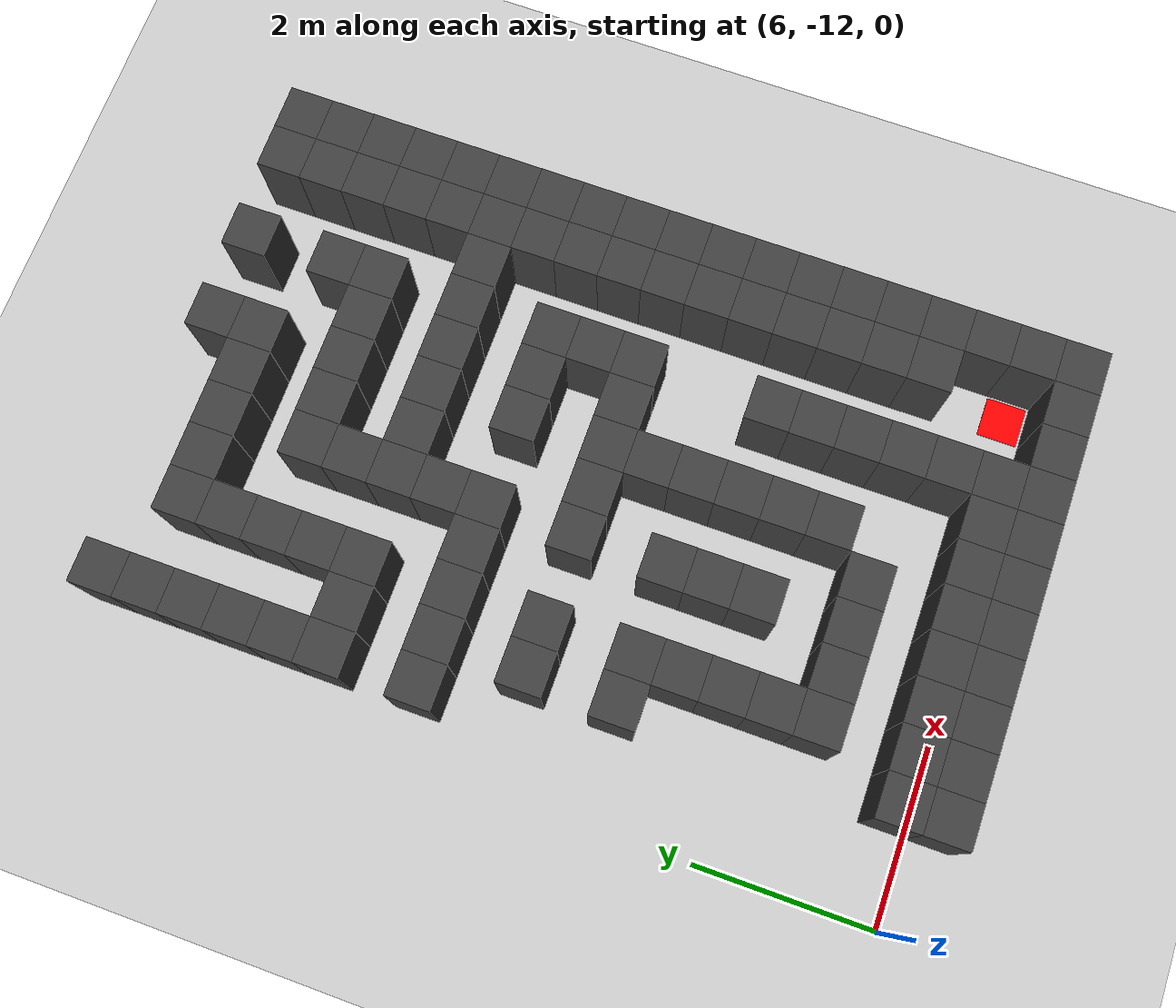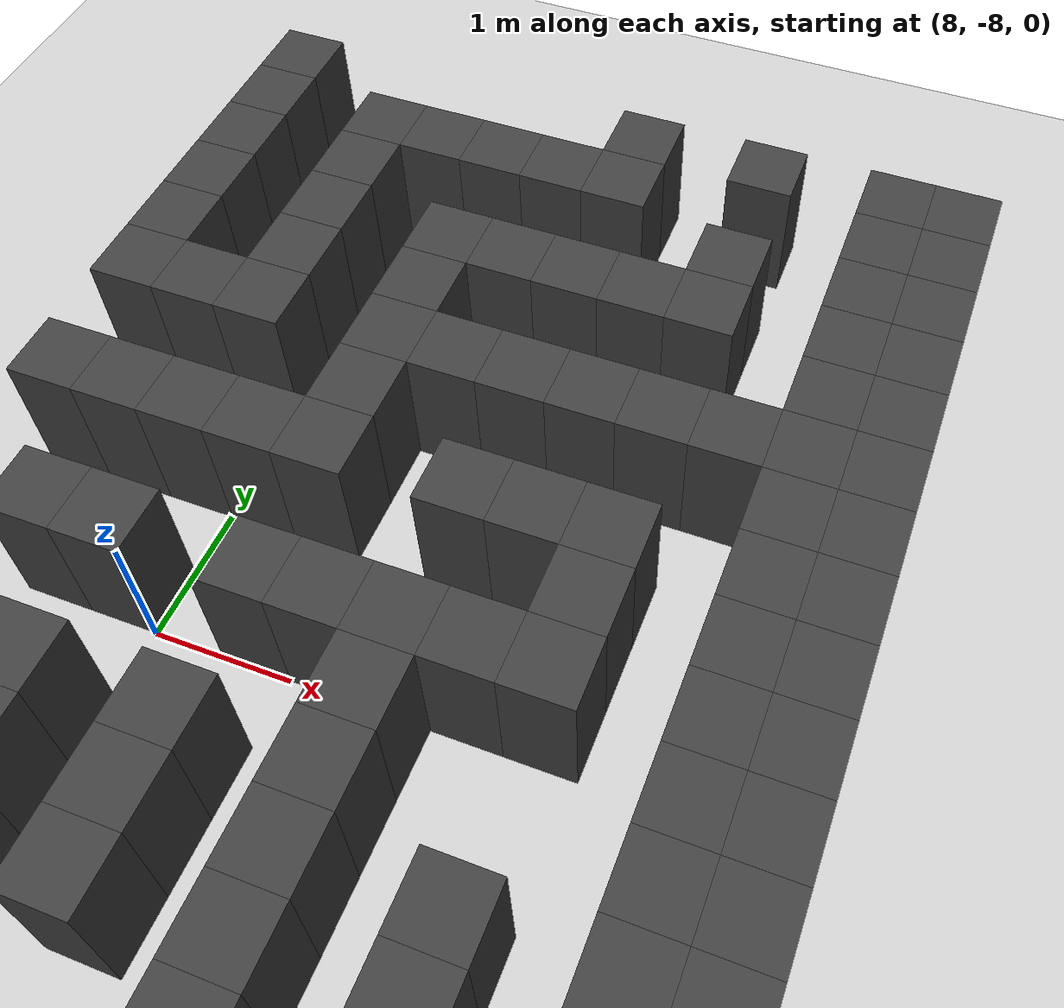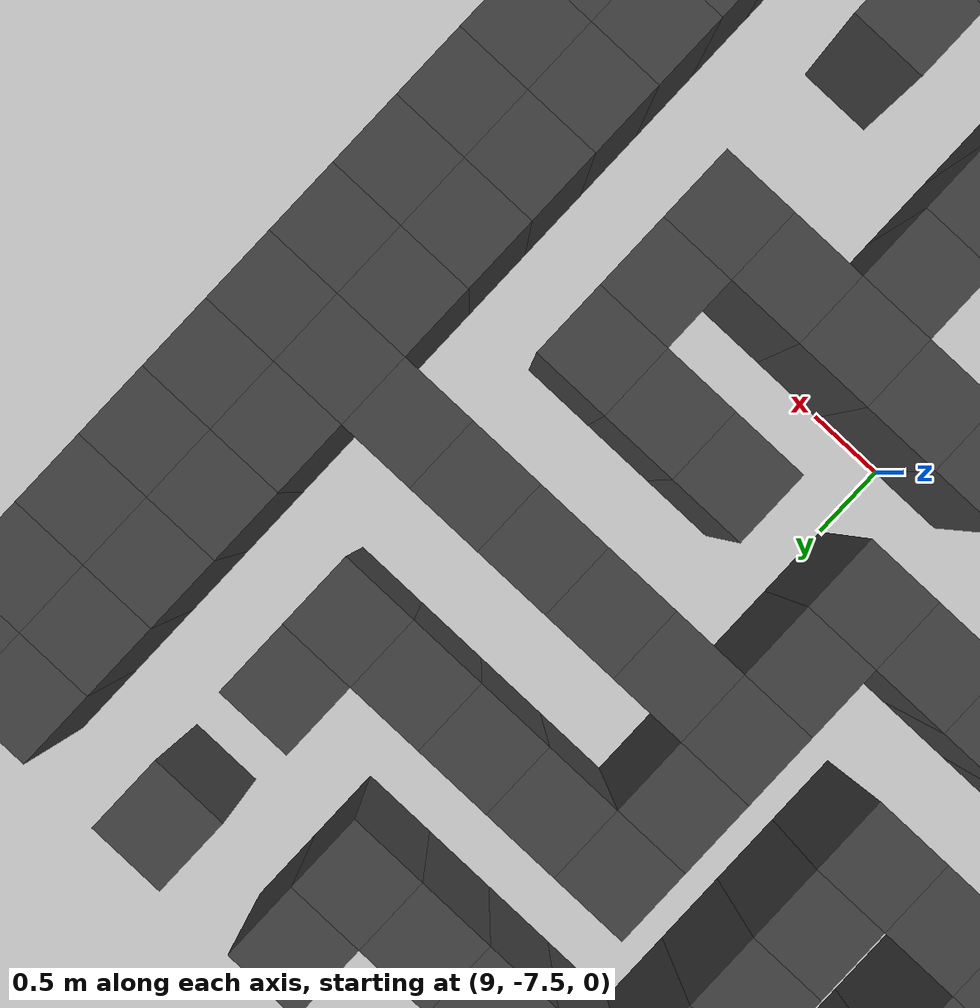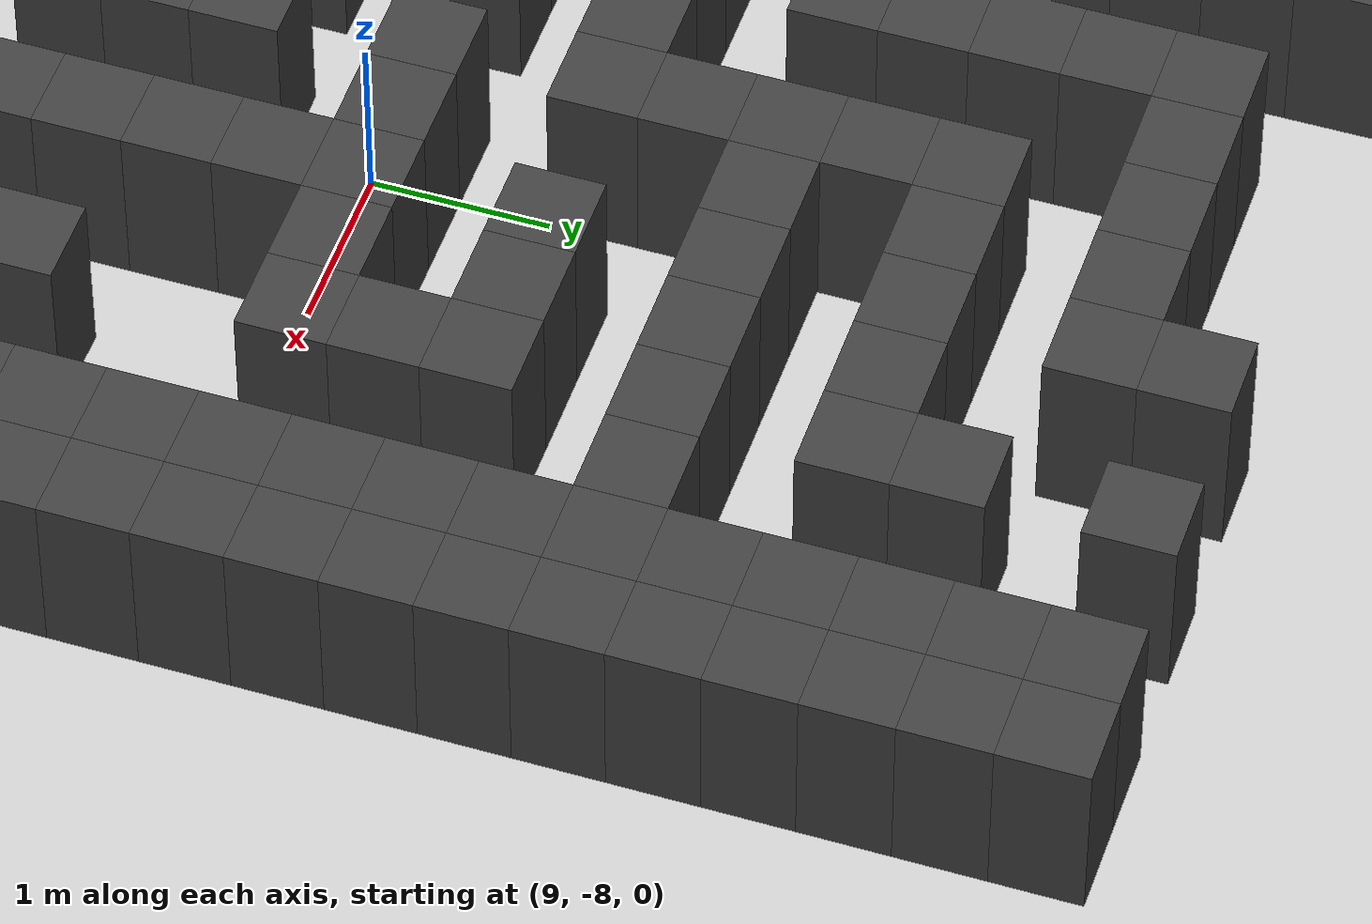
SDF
<sdf version="1.7">
 <world name="map_16734">
  <model name="ground_plane">
   <static>true</static>
   <link name="link">
    <collision name="collision">
     <geometry><plane><normal>0 0 1</normal><size>200 200</size></plane></geometry>
    </collision>
    <visual name="visual">
     <geometry><plane><normal>0 0 1</normal><size>200 200</size></plane></geometry>
     <material><ambient>0.8 0.8 0.8 1</ambient><diffuse>0.8 0.8 0.8 1</diffuse></material>
    </visual>
   </link>
  </model>
  <model name="maze_environment">
   <static>true</static>
   <link name="wall_769">
    <pose>6.750 -3.250 0.500 0 0 0</pose>
    <collision name="col"><geometry><box><size>0.5 0.5 1.0</size></box></geometry></collision>
    <visual name="vis">
     <geometry><box><size>0.5 0.5 1.0</size></box></geometry>
     <material><ambient>0.15 0.15 0.15 1</ambient><diffuse>0.25 0.25 0.25 1</diffuse></material>
    </visual>
   </link>
   <link name="wall_770">
    <pose>9.750 -3.250 0.500 0 0 0</pose>
    <collision name="col"><geometry><box><size>0.5 0.5 1.0</size></box></geometry></collision>
    <visual name="vis">
     <geometry><box><size>0.5 0.5 1.0</size></box></geometry>
     <material><ambient>0.15 0.15 0.15 1</ambient><diffuse>0.25 0.25 0.25 1</diffuse></material>
    </visual>
   </link>
   <link name="wall_771">
    <pose>10.750 -3.250 0.500 0 0 0</pose>
    <collision name="col"><geometry><box><size>0.5 0.5 1.0</size></box></geometry></collision>
    <visual name="vis">
     <geometry><box><size>0.5 0.5 1.0</size></box></geometry>
     <material><ambient>0.15 0.15 0.15 1</ambient><diffuse>0.25 0.25 0.25 1</diffuse></material>
    </visual>
   </link>
   <link name="wall_772">
    <pose>11.750 -3.250 0.500 0 0 0</pose>
    <collision name="col"><geometry><box><size>0.5 0.5 1.0</size></box></geometry></collision>
    <visual name="vis">
     <geometry><box><size>0.5 0.5 1.0</size></box></geometry>
     <material><ambient>0.15 0.15 0.15 1</ambient><diffuse>0.25 0.25 0.25 1</diffuse></material>
    </visual>
   </link>
   <link name="wall_773">
    <pose>12.250 -3.250 0.500 0 0 0</pose>
    <collision name="col"><geometry><box><size>0.5 0.5 1.0</size></box></geometry></collision>
    <visual name="vis">
     <geometry><box><size>0.5 0.5 1.0</size></box></geometry>
     <material><ambient>0.15 0.15 0.15 1</ambient><diffuse>0.25 0.25 0.25 1</diffuse></material>
    </visual>
   </link>
   <link name="wall_803">
    <pose>6.750 -3.750 0.500 0 0 0</pose>
    <collision name="col"><geometry><box><size>0.5 0.5 1.0</size></box></geometry></collision>
    <visual name="vis">
     <geometry><box><size>0.5 0.5 1.0</size></box></geometry>
     <material><ambient>0.15 0.15 0.15 1</ambient><diffuse>0.25 0.25 0.25 1</diffuse></material>
    </visual>
   </link>
   <link name="wall_804">
    <pose>7.750 -3.750 0.500 0 0 0</pose>
    <collision name="col"><geometry><box><size>0.5 0.5 1.0</size></box></geometry></collision>
    <visual name="vis">
     <geometry><box><size>0.5 0.5 1.0</size></box></geometry>
     <material><ambient>0.15 0.15 0.15 1</ambient><diffuse>0.25 0.25 0.25 1</diffuse></material>
    </visual>
   </link>
   <link name="wall_805">
    <pose>8.250 -3.750 0.500 0 0 0</pose>
    <collision name="col"><geometry><box><size>0.5 0.5 1.0</size></box></geometry></collision>
    <visual name="vis">
     <geometry><box><size>0.5 0.5 1.0</size></box></geometry>
     <material><ambient>0.15 0.15 0.15 1</ambient><diffuse>0.25 0.25 0.25 1</diffuse></material>
    </visual>
   </link>
   <link name="wall_806">
    <pose>8.750 -3.750 0.500 0 0 0</pose>
    <collision name="col"><geometry><box><size>0.5 0.5 1.0</size></box></geometry></collision>
    <visual name="vis">
     <geometry><box><size>0.5 0.5 1.0</size></box></geometry>
     <material><ambient>0.15 0.15 0.15 1</ambient><diffuse>0.25 0.25 0.25 1</diffuse></material>
    </visual>
   </link>
   <link name="wall_807">
    <pose>9.250 -3.750 0.500 0 0 0</pose>
    <collision name="col"><geometry><box><size>0.5 0.5 1.0</size></box></geometry></collision>
    <visual name="vis">
     <geometry><box><size>0.5 0.5 1.0</size></box></geometry>
     <material><ambient>0.15 0.15 0.15 1</ambient><diffuse>0.25 0.25 0.25 1</diffuse></material>
    </visual>
   </link>
   <link name="wall_808">
    <pose>9.750 -3.750 0.500 0 0 0</pose>
    <collision name="col"><geometry><box><size>0.5 0.5 1.0</size></box></geometry></collision>
    <visual name="vis">
     <geometry><box><size>0.5 0.5 1.0</size></box></geometry>
     <material><ambient>0.15 0.15 0.15 1</ambient><diffuse>0.25 0.25 0.25 1</diffuse></material>
    </visual>
   </link>
   <link name="wall_809">
    <pose>11.750 -3.750 0.500 0 0 0</pose>
    <collision name="col"><geometry><box><size>0.5 0.5 1.0</size></box></geometry></collision>
    <visual name="vis">
     <geometry><box><size>0.5 0.5 1.0</size></box></geometry>
     <material><ambient>0.15 0.15 0.15 1</ambient><diffuse>0.25 0.25 0.25 1</diffuse></material>
    </visual>
   </link>
   <link name="wall_810">
    <pose>12.250 -3.750 0.500 0 0 0</pose>
    <collision name="col"><geometry><box><size>0.5 0.5 1.0</size></box></geometry></collision>
    <visual name="vis">
     <geometry><box><size>0.5 0.5 1.0</size></box></geometry>
     <material><ambient>0.15 0.15 0.15 1</ambient><diffuse>0.25 0.25 0.25 1</diffuse></material>
    </visual>
   </link>
   <link name="wall_819">
    <pose>6.750 -4.250 0.500 0 0 0</pose>
    <collision name="col"><geometry><box><size>0.5 0.5 1.0</size></box></geometry></collision>
    <visual name="vis">
     <geometry><box><size>0.5 0.5 1.0</size></box></geometry>
     <material><ambient>0.15 0.15 0.15 1</ambient><diffuse>0.25 0.25 0.25 1</diffuse></material>
    </visual>
   </link>
   <link name="wall_820">
    <pose>7.750 -4.250 0.500 0 0 0</pose>
    <collision name="col"><geometry><box><size>0.5 0.5 1.0</size></box></geometry></collision>
    <visual name="vis">
     <geometry><box><size>0.5 0.5 1.0</size></box></geometry>
     <material><ambient>0.15 0.15 0.15 1</ambient><diffuse>0.25 0.25 0.25 1</diffuse></material>
    </visual>
   </link>
   <link name="wall_821">
    <pose>10.750 -4.250 0.500 0 0 0</pose>
    <collision name="col"><geometry><box><size>0.5 0.5 1.0</size></box></geometry></collision>
    <visual name="vis">
     <geometry><box><size>0.5 0.5 1.0</size></box></geometry>
     <material><ambient>0.15 0.15 0.15 1</ambient><diffuse>0.25 0.25 0.25 1</diffuse></material>
    </visual>
   </link>
   <link name="wall_822">
    <pose>11.750 -4.250 0.500 0 0 0</pose>
    <collision name="col"><geometry><box><size>0.5 0.5 1.0</size></box></geometry></collision>
    <visual name="vis">
     <geometry><box><size>0.5 0.5 1.0</size></box></geometry>
     <material><ambient>0.15 0.15 0.15 1</ambient><diffuse>0.25 0.25 0.25 1</diffuse></material>
    </visual>
   </link>
   <link name="wall_823">
    <pose>12.250 -4.250 0.500 0 0 0</pose>
    <collision name="col"><geometry><box><size>0.5 0.5 1.0</size></box></geometry></collision>
    <visual name="vis">
     <geometry><box><size>0.5 0.5 1.0</size></box></geometry>
     <material><ambient>0.15 0.15 0.15 1</ambient><diffuse>0.25 0.25 0.25 1</diffuse></material>
    </visual>
   </link>
   <link name="wall_852">
    <pose>6.750 -4.750 0.500 0 0 0</pose>
    <collision name="col"><geometry><box><size>0.5 0.5 1.0</size></box></geometry></collision>
    <visual name="vis">
     <geometry><box><size>0.5 0.5 1.0</size></box></geometry>
     <material><ambient>0.15 0.15 0.15 1</ambient><diffuse>0.25 0.25 0.25 1</diffuse></material>
    </visual>
   </link>
   <link name="wall_853">
    <pose>7.750 -4.750 0.500 0 0 0</pose>
    <collision name="col"><geometry><box><size>0.5 0.5 1.0</size></box></geometry></collision>
    <visual name="vis">
     <geometry><box><size>0.5 0.5 1.0</size></box></geometry>
     <material><ambient>0.15 0.15 0.15 1</ambient><diffuse>0.25 0.25 0.25 1</diffuse></material>
    </visual>
   </link>
   <link name="wall_854">
    <pose>8.750 -4.750 0.500 0 0 0</pose>
    <collision name="col"><geometry><box><size>0.5 0.5 1.0</size></box></geometry></collision>
    <visual name="vis">
     <geometry><box><size>0.5 0.5 1.0</size></box></geometry>
     <material><ambient>0.15 0.15 0.15 1</ambient><diffuse>0.25 0.25 0.25 1</diffuse></material>
    </visual>
   </link>
   <link name="wall_855">
    <pose>9.250 -4.750 0.500 0 0 0</pose>
    <collision name="col"><geometry><box><size>0.5 0.5 1.0</size></box></geometry></collision>
    <visual name="vis">
     <geometry><box><size>0.5 0.5 1.0</size></box></geometry>
     <material><ambient>0.15 0.15 0.15 1</ambient><diffuse>0.25 0.25 0.25 1</diffuse></material>
    </visual>
   </link>
   <link name="wall_856">
    <pose>9.750 -4.750 0.500 0 0 0</pose>
    <collision name="col"><geometry><box><size>0.5 0.5 1.0</size></box></geometry></collision>
    <visual name="vis">
     <geometry><box><size>0.5 0.5 1.0</size></box></geometry>
     <material><ambient>0.15 0.15 0.15 1</ambient><diffuse>0.25 0.25 0.25 1</diffuse></material>
    </visual>
   </link>
   <link name="wall_857">
    <pose>10.250 -4.750 0.500 0 0 0</pose>
    <collision name="col"><geometry><box><size>0.5 0.5 1.0</size></box></geometry></collision>
    <visual name="vis">
     <geometry><box><size>0.5 0.5 1.0</size></box></geometry>
     <material><ambient>0.15 0.15 0.15 1</ambient><diffuse>0.25 0.25 0.25 1</diffuse></material>
    </visual>
   </link>
   <link name="wall_858">
    <pose>10.750 -4.750 0.500 0 0 0</pose>
    <collision name="col"><geometry><box><size>0.5 0.5 1.0</size></box></geometry></collision>
    <visual name="vis">
     <geometry><box><size>0.5 0.5 1.0</size></box></geometry>
     <material><ambient>0.15 0.15 0.15 1</ambient><diffuse>0.25 0.25 0.25 1</diffuse></material>
    </visual>
   </link>
   <link name="wall_859">
    <pose>11.750 -4.750 0.500 0 0 0</pose>
    <collision name="col"><geometry><box><size>0.5 0.5 1.0</size></box></geometry></collision>
    <visual name="vis">
     <geometry><box><size>0.5 0.5 1.0</size></box></geometry>
     <material><ambient>0.15 0.15 0.15 1</ambient><diffuse>0.25 0.25 0.25 1</diffuse></material>
    </visual>
   </link>
   <link name="wall_860">
    <pose>12.250 -4.750 0.500 0 0 0</pose>
    <collision name="col"><geometry><box><size>0.5 0.5 1.0</size></box></geometry></collision>
    <visual name="vis">
     <geometry><box><size>0.5 0.5 1.0</size></box></geometry>
     <material><ambient>0.15 0.15 0.15 1</ambient><diffuse>0.25 0.25 0.25 1</diffuse></material>
    </visual>
   </link>
   <link name="wall_870">
    <pose>6.750 -5.250 0.500 0 0 0</pose>
    <collision name="col"><geometry><box><size>0.5 0.5 1.0</size></box></geometry></collision>
    <visual name="vis">
     <geometry><box><size>0.5 0.5 1.0</size></box></geometry>
     <material><ambient>0.15 0.15 0.15 1</ambient><diffuse>0.25 0.25 0.25 1</diffuse></material>
    </visual>
   </link>
   <link name="wall_871">
    <pose>7.750 -5.250 0.500 0 0 0</pose>
    <collision name="col"><geometry><box><size>0.5 0.5 1.0</size></box></geometry></collision>
    <visual name="vis">
     <geometry><box><size>0.5 0.5 1.0</size></box></geometry>
     <material><ambient>0.15 0.15 0.15 1</ambient><diffuse>0.25 0.25 0.25 1</diffuse></material>
    </visual>
   </link>
   <link name="wall_872">
    <pose>8.750 -5.250 0.500 0 0 0</pose>
    <collision name="col"><geometry><box><size>0.5 0.5 1.0</size></box></geometry></collision>
    <visual name="vis">
     <geometry><box><size>0.5 0.5 1.0</size></box></geometry>
     <material><ambient>0.15 0.15 0.15 1</ambient><diffuse>0.25 0.25 0.25 1</diffuse></material>
    </visual>
   </link>
   <link name="wall_873">
    <pose>11.750 -5.250 0.500 0 0 0</pose>
    <collision name="col"><geometry><box><size>0.5 0.5 1.0</size></box></geometry></collision>
    <visual name="vis">
     <geometry><box><size>0.5 0.5 1.0</size></box></geometry>
     <material><ambient>0.15 0.15 0.15 1</ambient><diffuse>0.25 0.25 0.25 1</diffuse></material>
    </visual>
   </link>
   <link name="wall_874">
    <pose>12.250 -5.250 0.500 0 0 0</pose>
    <collision name="col"><geometry><box><size>0.5 0.5 1.0</size></box></geometry></collision>
    <visual name="vis">
     <geometry><box><size>0.5 0.5 1.0</size></box></geometry>
     <material><ambient>0.15 0.15 0.15 1</ambient><diffuse>0.25 0.25 0.25 1</diffuse></material>
    </visual>
   </link>
   <link name="wall_900">
    <pose>6.750 -5.750 0.500 0 0 0</pose>
    <collision name="col"><geometry><box><size>0.5 0.5 1.0</size></box></geometry></collision>
    <visual name="vis">
     <geometry><box><size>0.5 0.5 1.0</size></box></geometry>
     <material><ambient>0.15 0.15 0.15 1</ambient><diffuse>0.25 0.25 0.25 1</diffuse></material>
    </visual>
   </link>
   <link name="wall_901">
    <pose>7.250 -5.750 0.500 0 0 0</pose>
    <collision name="col"><geometry><box><size>0.5 0.5 1.0</size></box></geometry></collision>
    <visual name="vis">
     <geometry><box><size>0.5 0.5 1.0</size></box></geometry>
     <material><ambient>0.15 0.15 0.15 1</ambient><diffuse>0.25 0.25 0.25 1</diffuse></material>
    </visual>
   </link>
   <link name="wall_902">
    <pose>7.750 -5.750 0.500 0 0 0</pose>
    <collision name="col"><geometry><box><size>0.5 0.5 1.0</size></box></geometry></collision>
    <visual name="vis">
     <geometry><box><size>0.5 0.5 1.0</size></box></geometry>
     <material><ambient>0.15 0.15 0.15 1</ambient><diffuse>0.25 0.25 0.25 1</diffuse></material>
    </visual>
   </link>
   <link name="wall_903">
    <pose>8.750 -5.750 0.500 0 0 0</pose>
    <collision name="col"><geometry><box><size>0.5 0.5 1.0</size></box></geometry></collision>
    <visual name="vis">
     <geometry><box><size>0.5 0.5 1.0</size></box></geometry>
     <material><ambient>0.15 0.15 0.15 1</ambient><diffuse>0.25 0.25 0.25 1</diffuse></material>
    </visual>
   </link>
   <link name="wall_904">
    <pose>9.250 -5.750 0.500 0 0 0</pose>
    <collision name="col"><geometry><box><size>0.5 0.5 1.0</size></box></geometry></collision>
    <visual name="vis">
     <geometry><box><size>0.5 0.5 1.0</size></box></geometry>
     <material><ambient>0.15 0.15 0.15 1</ambient><diffuse>0.25 0.25 0.25 1</diffuse></material>
    </visual>
   </link>
   <link name="wall_905">
    <pose>9.750 -5.750 0.500 0 0 0</pose>
    <collision name="col"><geometry><box><size>0.5 0.5 1.0</size></box></geometry></collision>
    <visual name="vis">
     <geometry><box><size>0.5 0.5 1.0</size></box></geometry>
     <material><ambient>0.15 0.15 0.15 1</ambient><diffuse>0.25 0.25 0.25 1</diffuse></material>
    </visual>
   </link>
   <link name="wall_906">
    <pose>10.250 -5.750 0.500 0 0 0</pose>
    <collision name="col"><geometry><box><size>0.5 0.5 1.0</size></box></geometry></collision>
    <visual name="vis">
     <geometry><box><size>0.5 0.5 1.0</size></box></geometry>
     <material><ambient>0.15 0.15 0.15 1</ambient><diffuse>0.25 0.25 0.25 1</diffuse></material>
    </visual>
   </link>
   <link name="wall_907">
    <pose>10.750 -5.750 0.500 0 0 0</pose>
    <collision name="col"><geometry><box><size>0.5 0.5 1.0</size></box></geometry></collision>
    <visual name="vis">
     <geometry><box><size>0.5 0.5 1.0</size></box></geometry>
     <material><ambient>0.15 0.15 0.15 1</ambient><diffuse>0.25 0.25 0.25 1</diffuse></material>
    </visual>
   </link>
   <link name="wall_908">
    <pose>11.250 -5.750 0.500 0 0 0</pose>
    <collision name="col"><geometry><box><size>0.5 0.5 1.0</size></box></geometry></collision>
    <visual name="vis">
     <geometry><box><size>0.5 0.5 1.0</size></box></geometry>
     <material><ambient>0.15 0.15 0.15 1</ambient><diffuse>0.25 0.25 0.25 1</diffuse></material>
    </visual>
   </link>
   <link name="wall_909">
    <pose>11.750 -5.750 0.500 0 0 0</pose>
    <collision name="col"><geometry><box><size>0.5 0.5 1.0</size></box></geometry></collision>
    <visual name="vis">
     <geometry><box><size>0.5 0.5 1.0</size></box></geometry>
     <material><ambient>0.15 0.15 0.15 1</ambient><diffuse>0.25 0.25 0.25 1</diffuse></material>
    </visual>
   </link>
   <link name="wall_910">
    <pose>12.250 -5.750 0.500 0 0 0</pose>
    <collision name="col"><geometry><box><size>0.5 0.5 1.0</size></box></geometry></collision>
    <visual name="vis">
     <geometry><box><size>0.5 0.5 1.0</size></box></geometry>
     <material><ambient>0.15 0.15 0.15 1</ambient><diffuse>0.25 0.25 0.25 1</diffuse></material>
    </visual>
   </link>
   <link name="wall_917">
    <pose>8.750 -6.250 0.500 0 0 0</pose>
    <collision name="col"><geometry><box><size>0.5 0.5 1.0</size></box></geometry></collision>
    <visual name="vis">
     <geometry><box><size>0.5 0.5 1.0</size></box></geometry>
     <material><ambient>0.15 0.15 0.15 1</ambient><diffuse>0.25 0.25 0.25 1</diffuse></material>
    </visual>
   </link>
   <link name="wall_918">
    <pose>11.750 -6.250 0.500 0 0 0</pose>
    <collision name="col"><geometry><box><size>0.5 0.5 1.0</size></box></geometry></collision>
    <visual name="vis">
     <geometry><box><size>0.5 0.5 1.0</size></box></geometry>
     <material><ambient>0.15 0.15 0.15 1</ambient><diffuse>0.25 0.25 0.25 1</diffuse></material>
    </visual>
   </link>
   <link name="wall_919">
    <pose>12.250 -6.250 0.500 0 0 0</pose>
    <collision name="col"><geometry><box><size>0.5 0.5 1.0</size></box></geometry></collision>
    <visual name="vis">
     <geometry><box><size>0.5 0.5 1.0</size></box></geometry>
     <material><ambient>0.15 0.15 0.15 1</ambient><diffuse>0.25 0.25 0.25 1</diffuse></material>
    </visual>
   </link>
   <link name="wall_947">
    <pose>6.750 -6.750 0.500 0 0 0</pose>
    <collision name="col"><geometry><box><size>0.5 0.5 1.0</size></box></geometry></collision>
    <visual name="vis">
     <geometry><box><size>0.5 0.5 1.0</size></box></geometry>
     <material><ambient>0.15 0.15 0.15 1</ambient><diffuse>0.25 0.25 0.25 1</diffuse></material>
    </visual>
   </link>
   <link name="wall_948">
    <pose>7.250 -6.750 0.500 0 0 0</pose>
    <collision name="col"><geometry><box><size>0.5 0.5 1.0</size></box></geometry></collision>
    <visual name="vis">
     <geometry><box><size>0.5 0.5 1.0</size></box></geometry>
     <material><ambient>0.15 0.15 0.15 1</ambient><diffuse>0.25 0.25 0.25 1</diffuse></material>
    </visual>
   </link>
   <link name="wall_949">
    <pose>7.750 -6.750 0.500 0 0 0</pose>
    <collision name="col"><geometry><box><size>0.5 0.5 1.0</size></box></geometry></collision>
    <visual name="vis">
     <geometry><box><size>0.5 0.5 1.0</size></box></geometry>
     <material><ambient>0.15 0.15 0.15 1</ambient><diffuse>0.25 0.25 0.25 1</diffuse></material>
    </visual>
   </link>
   <link name="wall_950">
    <pose>8.250 -6.750 0.500 0 0 0</pose>
    <collision name="col"><geometry><box><size>0.5 0.5 1.0</size></box></geometry></collision>
    <visual name="vis">
     <geometry><box><size>0.5 0.5 1.0</size></box></geometry>
     <material><ambient>0.15 0.15 0.15 1</ambient><diffuse>0.25 0.25 0.25 1</diffuse></material>
    </visual>
   </link>
   <link name="wall_951">
    <pose>8.750 -6.750 0.500 0 0 0</pose>
    <collision name="col"><geometry><box><size>0.5 0.5 1.0</size></box></geometry></collision>
    <visual name="vis">
     <geometry><box><size>0.5 0.5 1.0</size></box></geometry>
     <material><ambient>0.15 0.15 0.15 1</ambient><diffuse>0.25 0.25 0.25 1</diffuse></material>
    </visual>
   </link>
   <link name="wall_952">
    <pose>9.750 -6.750 0.500 0 0 0</pose>
    <collision name="col"><geometry><box><size>0.5 0.5 1.0</size></box></geometry></collision>
    <visual name="vis">
     <geometry><box><size>0.5 0.5 1.0</size></box></geometry>
     <material><ambient>0.15 0.15 0.15 1</ambient><diffuse>0.25 0.25 0.25 1</diffuse></material>
    </visual>
   </link>
   <link name="wall_953">
    <pose>10.250 -6.750 0.500 0 0 0</pose>
    <collision name="col"><geometry><box><size>0.5 0.5 1.0</size></box></geometry></collision>
    <visual name="vis">
     <geometry><box><size>0.5 0.5 1.0</size></box></geometry>
     <material><ambient>0.15 0.15 0.15 1</ambient><diffuse>0.25 0.25 0.25 1</diffuse></material>
    </visual>
   </link>
   <link name="wall_954">
    <pose>10.750 -6.750 0.500 0 0 0</pose>
    <collision name="col"><geometry><box><size>0.5 0.5 1.0</size></box></geometry></collision>
    <visual name="vis">
     <geometry><box><size>0.5 0.5 1.0</size></box></geometry>
     <material><ambient>0.15 0.15 0.15 1</ambient><diffuse>0.25 0.25 0.25 1</diffuse></material>
    </visual>
   </link>
   <link name="wall_955">
    <pose>11.750 -6.750 0.500 0 0 0</pose>
    <collision name="col"><geometry><box><size>0.5 0.5 1.0</size></box></geometry></collision>
    <visual name="vis">
     <geometry><box><size>0.5 0.5 1.0</size></box></geometry>
     <material><ambient>0.15 0.15 0.15 1</ambient><diffuse>0.25 0.25 0.25 1</diffuse></material>
    </visual>
   </link>
   <link name="wall_956">
    <pose>12.250 -6.750 0.500 0 0 0</pose>
    <collision name="col"><geometry><box><size>0.5 0.5 1.0</size></box></geometry></collision>
    <visual name="vis">
     <geometry><box><size>0.5 0.5 1.0</size></box></geometry>
     <material><ambient>0.15 0.15 0.15 1</ambient><diffuse>0.25 0.25 0.25 1</diffuse></material>
    </visual>
   </link>
   <link name="wall_965">
    <pose>10.750 -7.250 0.500 0 0 0</pose>
    <collision name="col"><geometry><box><size>0.5 0.5 1.0</size></box></geometry></collision>
    <visual name="vis">
     <geometry><box><size>0.5 0.5 1.0</size></box></geometry>
     <material><ambient>0.15 0.15 0.15 1</ambient><diffuse>0.25 0.25 0.25 1</diffuse></material>
    </visual>
   </link>
   <link name="wall_966">
    <pose>11.750 -7.250 0.500 0 0 0</pose>
    <collision name="col"><geometry><box><size>0.5 0.5 1.0</size></box></geometry></collision>
    <visual name="vis">
     <geometry><box><size>0.5 0.5 1.0</size></box></geometry>
     <material><ambient>0.15 0.15 0.15 1</ambient><diffuse>0.25 0.25 0.25 1</diffuse></material>
    </visual>
   </link>
   <link name="wall_967">
    <pose>12.250 -7.250 0.500 0 0 0</pose>
    <collision name="col"><geometry><box><size>0.5 0.5 1.0</size></box></geometry></collision>
    <visual name="vis">
     <geometry><box><size>0.5 0.5 1.0</size></box></geometry>
     <material><ambient>0.15 0.15 0.15 1</ambient><diffuse>0.25 0.25 0.25 1</diffuse></material>
    </visual>
   </link>
   <link name="wall_995">
    <pose>7.250 -7.750 0.500 0 0 0</pose>
    <collision name="col"><geometry><box><size>0.5 0.5 1.0</size></box></geometry></collision>
    <visual name="vis">
     <geometry><box><size>0.5 0.5 1.0</size></box></geometry>
     <material><ambient>0.15 0.15 0.15 1</ambient><diffuse>0.25 0.25 0.25 1</diffuse></material>
    </visual>
   </link>
   <link name="wall_996">
    <pose>7.750 -7.750 0.500 0 0 0</pose>
    <collision name="col"><geometry><box><size>0.5 0.5 1.0</size></box></geometry></collision>
    <visual name="vis">
     <geometry><box><size>0.5 0.5 1.0</size></box></geometry>
     <material><ambient>0.15 0.15 0.15 1</ambient><diffuse>0.25 0.25 0.25 1</diffuse></material>
    </visual>
   </link>
   <link name="wall_997">
    <pose>8.750 -7.750 0.500 0 0 0</pose>
    <collision name="col"><geometry><box><size>0.5 0.5 1.0</size></box></geometry></collision>
    <visual name="vis">
     <geometry><box><size>0.5 0.5 1.0</size></box></geometry>
     <material><ambient>0.15 0.15 0.15 1</ambient><diffuse>0.25 0.25 0.25 1</diffuse></material>
    </visual>
   </link>
   <link name="wall_998">
    <pose>9.250 -7.750 0.500 0 0 0</pose>
    <collision name="col"><geometry><box><size>0.5 0.5 1.0</size></box></geometry></collision>
    <visual name="vis">
     <geometry><box><size>0.5 0.5 1.0</size></box></geometry>
     <material><ambient>0.15 0.15 0.15 1</ambient><diffuse>0.25 0.25 0.25 1</diffuse></material>
    </visual>
   </link>
   <link name="wall_999">
    <pose>9.750 -7.750 0.500 0 0 0</pose>
    <collision name="col"><geometry><box><size>0.5 0.5 1.0</size></box></geometry></collision>
    <visual name="vis">
     <geometry><box><size>0.5 0.5 1.0</size></box></geometry>
     <material><ambient>0.15 0.15 0.15 1</ambient><diffuse>0.25 0.25 0.25 1</diffuse></material>
    </visual>
   </link>
   <link name="wall_1000">
    <pose>10.250 -7.750 0.500 0 0 0</pose>
    <collision name="col"><geometry><box><size>0.5 0.5 1.0</size></box></geometry></collision>
    <visual name="vis">
     <geometry><box><size>0.5 0.5 1.0</size></box></geometry>
     <material><ambient>0.15 0.15 0.15 1</ambient><diffuse>0.25 0.25 0.25 1</diffuse></material>
    </visual>
   </link>
   <link name="wall_1001">
    <pose>10.750 -7.750 0.500 0 0 0</pose>
    <collision name="col"><geometry><box><size>0.5 0.5 1.0</size></box></geometry></collision>
    <visual name="vis">
     <geometry><box><size>0.5 0.5 1.0</size></box></geometry>
     <material><ambient>0.15 0.15 0.15 1</ambient><diffuse>0.25 0.25 0.25 1</diffuse></material>
    </visual>
   </link>
   <link name="wall_1002">
    <pose>11.750 -7.750 0.500 0 0 0</pose>
    <collision name="col"><geometry><box><size>0.5 0.5 1.0</size></box></geometry></collision>
    <visual name="vis">
     <geometry><box><size>0.5 0.5 1.0</size></box></geometry>
     <material><ambient>0.15 0.15 0.15 1</ambient><diffuse>0.25 0.25 0.25 1</diffuse></material>
    </visual>
   </link>
   <link name="wall_1003">
    <pose>12.250 -7.750 0.500 0 0 0</pose>
    <collision name="col"><geometry><box><size>0.5 0.5 1.0</size></box></geometry></collision>
    <visual name="vis">
     <geometry><box><size>0.5 0.5 1.0</size></box></geometry>
     <material><ambient>0.15 0.15 0.15 1</ambient><diffuse>0.25 0.25 0.25 1</diffuse></material>
    </visual>
   </link>
   <link name="wall_1011">
    <pose>9.750 -8.250 0.500 0 0 0</pose>
    <collision name="col"><geometry><box><size>0.5 0.5 1.0</size></box></geometry></collision>
    <visual name="vis">
     <geometry><box><size>0.5 0.5 1.0</size></box></geometry>
     <material><ambient>0.15 0.15 0.15 1</ambient><diffuse>0.25 0.25 0.25 1</diffuse></material>
    </visual>
   </link>
   <link name="wall_1012">
    <pose>11.750 -8.250 0.500 0 0 0</pose>
    <collision name="col"><geometry><box><size>0.5 0.5 1.0</size></box></geometry></collision>
    <visual name="vis">
     <geometry><box><size>0.5 0.5 1.0</size></box></geometry>
     <material><ambient>0.15 0.15 0.15 1</ambient><diffuse>0.25 0.25 0.25 1</diffuse></material>
    </visual>
   </link>
   <link name="wall_1013">
    <pose>12.250 -8.250 0.500 0 0 0</pose>
    <collision name="col"><geometry><box><size>0.5 0.5 1.0</size></box></geometry></collision>
    <visual name="vis">
     <geometry><box><size>0.5 0.5 1.0</size></box></geometry>
     <material><ambient>0.15 0.15 0.15 1</ambient><diffuse>0.25 0.25 0.25 1</diffuse></material>
    </visual>
   </link>
   <link name="wall_1043">
    <pose>7.250 -8.750 0.500 0 0 0</pose>
    <collision name="col"><geometry><box><size>0.5 0.5 1.0</size></box></geometry></collision>
    <visual name="vis">
     <geometry><box><size>0.5 0.5 1.0</size></box></geometry>
     <material><ambient>0.15 0.15 0.15 1</ambient><diffuse>0.25 0.25 0.25 1</diffuse></material>
    </visual>
   </link>
   <link name="wall_1044">
    <pose>7.750 -8.750 0.500 0 0 0</pose>
    <collision name="col"><geometry><box><size>0.5 0.5 1.0</size></box></geometry></collision>
    <visual name="vis">
     <geometry><box><size>0.5 0.5 1.0</size></box></geometry>
     <material><ambient>0.15 0.15 0.15 1</ambient><diffuse>0.25 0.25 0.25 1</diffuse></material>
    </visual>
   </link>
   <link name="wall_1045">
    <pose>8.750 -8.750 0.500 0 0 0</pose>
    <collision name="col"><geometry><box><size>0.5 0.5 1.0</size></box></geometry></collision>
    <visual name="vis">
     <geometry><box><size>0.5 0.5 1.0</size></box></geometry>
     <material><ambient>0.15 0.15 0.15 1</ambient><diffuse>0.25 0.25 0.25 1</diffuse></material>
    </visual>
   </link>
   <link name="wall_1046">
    <pose>9.750 -8.750 0.500 0 0 0</pose>
    <collision name="col"><geometry><box><size>0.5 0.5 1.0</size></box></geometry></collision>
    <visual name="vis">
     <geometry><box><size>0.5 0.5 1.0</size></box></geometry>
     <material><ambient>0.15 0.15 0.15 1</ambient><diffuse>0.25 0.25 0.25 1</diffuse></material>
    </visual>
   </link>
   <link name="wall_1047">
    <pose>11.750 -8.750 0.500 0 0 0</pose>
    <collision name="col"><geometry><box><size>0.5 0.5 1.0</size></box></geometry></collision>
    <visual name="vis">
     <geometry><box><size>0.5 0.5 1.0</size></box></geometry>
     <material><ambient>0.15 0.15 0.15 1</ambient><diffuse>0.25 0.25 0.25 1</diffuse></material>
    </visual>
   </link>
   <link name="wall_1048">
    <pose>12.250 -8.750 0.500 0 0 0</pose>
    <collision name="col"><geometry><box><size>0.5 0.5 1.0</size></box></geometry></collision>
    <visual name="vis">
     <geometry><box><size>0.5 0.5 1.0</size></box></geometry>
     <material><ambient>0.15 0.15 0.15 1</ambient><diffuse>0.25 0.25 0.25 1</diffuse></material>
    </visual>
   </link>
   <link name="wall_1055">
    <pose>7.750 -9.250 0.500 0 0 0</pose>
    <collision name="col"><geometry><box><size>0.5 0.5 1.0</size></box></geometry></collision>
    <visual name="vis">
     <geometry><box><size>0.5 0.5 1.0</size></box></geometry>
     <material><ambient>0.15 0.15 0.15 1</ambient><diffuse>0.25 0.25 0.25 1</diffuse></material>
    </visual>
   </link>
   <link name="wall_1056">
    <pose>8.750 -9.250 0.500 0 0 0</pose>
    <collision name="col"><geometry><box><size>0.5 0.5 1.0</size></box></geometry></collision>
    <visual name="vis">
     <geometry><box><size>0.5 0.5 1.0</size></box></geometry>
     <material><ambient>0.15 0.15 0.15 1</ambient><diffuse>0.25 0.25 0.25 1</diffuse></material>
    </visual>
   </link>
   <link name="wall_1057">
    <pose>9.750 -9.250 0.500 0 0 0</pose>
    <collision name="col"><geometry><box><size>0.5 0.5 1.0</size></box></geometry></collision>
    <visual name="vis">
     <geometry><box><size>0.5 0.5 1.0</size></box></geometry>
     <material><ambient>0.15 0.15 0.15 1</ambient><diffuse>0.25 0.25 0.25 1</diffuse></material>
    </visual>
   </link>
   <link name="wall_1058">
    <pose>10.750 -9.250 0.500 0 0 0</pose>
    <collision name="col"><geometry><box><size>0.5 0.5 1.0</size></box></geometry></collision>
    <visual name="vis">
     <geometry><box><size>0.5 0.5 1.0</size></box></geometry>
     <material><ambient>0.15 0.15 0.15 1</ambient><diffuse>0.25 0.25 0.25 1</diffuse></material>
    </visual>
   </link>
   <link name="wall_1059">
    <pose>11.750 -9.250 0.500 0 0 0</pose>
    <collision name="col"><geometry><box><size>0.5 0.5 1.0</size></box></geometry></collision>
    <visual name="vis">
     <geometry><box><size>0.5 0.5 1.0</size></box></geometry>
     <material><ambient>0.15 0.15 0.15 1</ambient><diffuse>0.25 0.25 0.25 1</diffuse></material>
    </visual>
   </link>
   <link name="wall_1060">
    <pose>12.250 -9.250 0.500 0 0 0</pose>
    <collision name="col"><geometry><box><size>0.5 0.5 1.0</size></box></geometry></collision>
    <visual name="vis">
     <geometry><box><size>0.5 0.5 1.0</size></box></geometry>
     <material><ambient>0.15 0.15 0.15 1</ambient><diffuse>0.25 0.25 0.25 1</diffuse></material>
    </visual>
   </link>
   <link name="wall_1091">
    <pose>7.750 -9.750 0.500 0 0 0</pose>
    <collision name="col"><geometry><box><size>0.5 0.5 1.0</size></box></geometry></collision>
    <visual name="vis">
     <geometry><box><size>0.5 0.5 1.0</size></box></geometry>
     <material><ambient>0.15 0.15 0.15 1</ambient><diffuse>0.25 0.25 0.25 1</diffuse></material>
    </visual>
   </link>
   <link name="wall_1092">
    <pose>8.750 -9.750 0.500 0 0 0</pose>
    <collision name="col"><geometry><box><size>0.5 0.5 1.0</size></box></geometry></collision>
    <visual name="vis">
     <geometry><box><size>0.5 0.5 1.0</size></box></geometry>
     <material><ambient>0.15 0.15 0.15 1</ambient><diffuse>0.25 0.25 0.25 1</diffuse></material>
    </visual>
   </link>
   <link name="wall_1093">
    <pose>9.750 -9.750 0.500 0 0 0</pose>
    <collision name="col"><geometry><box><size>0.5 0.5 1.0</size></box></geometry></collision>
    <visual name="vis">
     <geometry><box><size>0.5 0.5 1.0</size></box></geometry>
     <material><ambient>0.15 0.15 0.15 1</ambient><diffuse>0.25 0.25 0.25 1</diffuse></material>
    </visual>
   </link>
   <link name="wall_1094">
    <pose>10.750 -9.750 0.500 0 0 0</pose>
    <collision name="col"><geometry><box><size>0.5 0.5 1.0</size></box></geometry></collision>
    <visual name="vis">
     <geometry><box><size>0.5 0.5 1.0</size></box></geometry>
     <material><ambient>0.15 0.15 0.15 1</ambient><diffuse>0.25 0.25 0.25 1</diffuse></material>
    </visual>
   </link>
   <link name="wall_1095">
    <pose>11.750 -9.750 0.500 0 0 0</pose>
    <collision name="col"><geometry><box><size>0.5 0.5 1.0</size></box></geometry></collision>
    <visual name="vis">
     <geometry><box><size>0.5 0.5 1.0</size></box></geometry>
     <material><ambient>0.15 0.15 0.15 1</ambient><diffuse>0.25 0.25 0.25 1</diffuse></material>
    </visual>
   </link>
   <link name="wall_1096">
    <pose>12.250 -9.750 0.500 0 0 0</pose>
    <collision name="col"><geometry><box><size>0.5 0.5 1.0</size></box></geometry></collision>
    <visual name="vis">
     <geometry><box><size>0.5 0.5 1.0</size></box></geometry>
     <material><ambient>0.15 0.15 0.15 1</ambient><diffuse>0.25 0.25 0.25 1</diffuse></material>
    </visual>
   </link>
   <link name="wall_1105">
    <pose>7.750 -10.250 0.500 0 0 0</pose>
    <collision name="col"><geometry><box><size>0.5 0.5 1.0</size></box></geometry></collision>
    <visual name="vis">
     <geometry><box><size>0.5 0.5 1.0</size></box></geometry>
     <material><ambient>0.15 0.15 0.15 1</ambient><diffuse>0.25 0.25 0.25 1</diffuse></material>
    </visual>
   </link>
   <link name="wall_1106">
    <pose>9.750 -10.250 0.500 0 0 0</pose>
    <collision name="col"><geometry><box><size>0.5 0.5 1.0</size></box></geometry></collision>
    <visual name="vis">
     <geometry><box><size>0.5 0.5 1.0</size></box></geometry>
     <material><ambient>0.15 0.15 0.15 1</ambient><diffuse>0.25 0.25 0.25 1</diffuse></material>
    </visual>
   </link>
   <link name="wall_1107">
    <pose>10.750 -10.250 0.500 0 0 0</pose>
    <collision name="col"><geometry><box><size>0.5 0.5 1.0</size></box></geometry></collision>
    <visual name="vis">
     <geometry><box><size>0.5 0.5 1.0</size></box></geometry>
     <material><ambient>0.15 0.15 0.15 1</ambient><diffuse>0.25 0.25 0.25 1</diffuse></material>
    </visual>
   </link>
   <link name="wall_1108">
    <pose>11.750 -10.250 0.500 0 0 0</pose>
    <collision name="col"><geometry><box><size>0.5 0.5 1.0</size></box></geometry></collision>
    <visual name="vis">
     <geometry><box><size>0.5 0.5 1.0</size></box></geometry>
     <material><ambient>0.15 0.15 0.15 1</ambient><diffuse>0.25 0.25 0.25 1</diffuse></material>
    </visual>
   </link>
   <link name="wall_1109">
    <pose>12.250 -10.250 0.500 0 0 0</pose>
    <collision name="col"><geometry><box><size>0.5 0.5 1.0</size></box></geometry></collision>
    <visual name="vis">
     <geometry><box><size>0.5 0.5 1.0</size></box></geometry>
     <material><ambient>0.15 0.15 0.15 1</ambient><diffuse>0.25 0.25 0.25 1</diffuse></material>
    </visual>
   </link>
   <link name="wall_1133">
    <pose>7.750 -10.750 0.500 0 0 0</pose>
    <collision name="col"><geometry><box><size>0.5 0.5 1.0</size></box></geometry></collision>
    <visual name="vis">
     <geometry><box><size>0.5 0.5 1.0</size></box></geometry>
     <material><ambient>0.15 0.15 0.15 1</ambient><diffuse>0.25 0.25 0.25 1</diffuse></material>
    </visual>
   </link>
   <link name="wall_1134">
    <pose>8.250 -10.750 0.500 0 0 0</pose>
    <collision name="col"><geometry><box><size>0.5 0.5 1.0</size></box></geometry></collision>
    <visual name="vis">
     <geometry><box><size>0.5 0.5 1.0</size></box></geometry>
     <material><ambient>0.15 0.15 0.15 1</ambient><diffuse>0.25 0.25 0.25 1</diffuse></material>
    </visual>
   </link>
   <link name="wall_1135">
    <pose>8.750 -10.750 0.500 0 0 0</pose>
    <collision name="col"><geometry><box><size>0.5 0.5 1.0</size></box></geometry></collision>
    <visual name="vis">
     <geometry><box><size>0.5 0.5 1.0</size></box></geometry>
     <material><ambient>0.15 0.15 0.15 1</ambient><diffuse>0.25 0.25 0.25 1</diffuse></material>
    </visual>
   </link>
   <link name="wall_1136">
    <pose>9.250 -10.750 0.500 0 0 0</pose>
    <collision name="col"><geometry><box><size>0.5 0.5 1.0</size></box></geometry></collision>
    <visual name="vis">
     <geometry><box><size>0.5 0.5 1.0</size></box></geometry>
     <material><ambient>0.15 0.15 0.15 1</ambient><diffuse>0.25 0.25 0.25 1</diffuse></material>
    </visual>
   </link>
   <link name="wall_1137">
    <pose>10.750 -10.750 0.500 0 0 0</pose>
    <collision name="col"><geometry><box><size>0.5 0.5 1.0</size></box></geometry></collision>
    <visual name="vis">
     <geometry><box><size>0.5 0.5 1.0</size></box></geometry>
     <material><ambient>0.15 0.15 0.15 1</ambient><diffuse>0.25 0.25 0.25 1</diffuse></material>
    </visual>
   </link>
   <link name="wall_1138">
    <pose>11.750 -10.750 0.500 0 0 0</pose>
    <collision name="col"><geometry><box><size>0.5 0.5 1.0</size></box></geometry></collision>
    <visual name="vis">
     <geometry><box><size>0.5 0.5 1.0</size></box></geometry>
     <material><ambient>0.15 0.15 0.15 1</ambient><diffuse>0.25 0.25 0.25 1</diffuse></material>
    </visual>
   </link>
   <link name="wall_1139">
    <pose>12.250 -10.750 0.500 0 0 0</pose>
    <collision name="col"><geometry><box><size>0.5 0.5 1.0</size></box></geometry></collision>
    <visual name="vis">
     <geometry><box><size>0.5 0.5 1.0</size></box></geometry>
     <material><ambient>0.15 0.15 0.15 1</ambient><diffuse>0.25 0.25 0.25 1</diffuse></material>
    </visual>
   </link>
   <link name="wall_1146">
    <pose>10.750 -11.250 0.500 0 0 0</pose>
    <collision name="col"><geometry><box><size>0.5 0.5 1.0</size></box></geometry></collision>
    <visual name="vis">
     <geometry><box><size>0.5 0.5 1.0</size></box></geometry>
     <material><ambient>0.15 0.15 0.15 1</ambient><diffuse>0.25 0.25 0.25 1</diffuse></material>
    </visual>
   </link>
   <link name="wall_1147">
    <pose>12.250 -11.250 0.500 0 0 0</pose>
    <collision name="col"><geometry><box><size>0.5 0.5 1.0</size></box></geometry></collision>
    <visual name="vis">
     <geometry><box><size>0.5 0.5 1.0</size></box></geometry>
     <material><ambient>0.15 0.15 0.15 1</ambient><diffuse>0.25 0.25 0.25 1</diffuse></material>
    </visual>
   </link>
   <link name="wall_1187">
    <pose>7.250 -11.750 0.500 0 0 0</pose>
    <collision name="col"><geometry><box><size>0.5 0.5 1.0</size></box></geometry></collision>
    <visual name="vis">
     <geometry><box><size>0.5 0.5 1.0</size></box></geometry>
     <material><ambient>0.15 0.15 0.15 1</ambient><diffuse>0.25 0.25 0.25 1</diffuse></material>
    </visual>
   </link>
   <link name="wall_1188">
    <pose>7.750 -11.750 0.500 0 0 0</pose>
    <collision name="col"><geometry><box><size>0.5 0.5 1.0</size></box></geometry></collision>
    <visual name="vis">
     <geometry><box><size>0.5 0.5 1.0</size></box></geometry>
     <material><ambient>0.15 0.15 0.15 1</ambient><diffuse>0.25 0.25 0.25 1</diffuse></material>
    </visual>
   </link>
   <link name="wall_1189">
    <pose>8.250 -11.750 0.500 0 0 0</pose>
    <collision name="col"><geometry><box><size>0.5 0.5 1.0</size></box></geometry></collision>
    <visual name="vis">
     <geometry><box><size>0.5 0.5 1.0</size></box></geometry>
     <material><ambient>0.15 0.15 0.15 1</ambient><diffuse>0.25 0.25 0.25 1</diffuse></material>
    </visual>
   </link>
   <link name="wall_1190">
    <pose>8.750 -11.750 0.500 0 0 0</pose>
    <collision name="col"><geometry><box><size>0.5 0.5 1.0</size></box></geometry></collision>
    <visual name="vis">
     <geometry><box><size>0.5 0.5 1.0</size></box></geometry>
     <material><ambient>0.15 0.15 0.15 1</ambient><diffuse>0.25 0.25 0.25 1</diffuse></material>
    </visual>
   </link>
   <link name="wall_1191">
    <pose>9.250 -11.750 0.500 0 0 0</pose>
    <collision name="col"><geometry><box><size>0.5 0.5 1.0</size></box></geometry></collision>
    <visual name="vis">
     <geometry><box><size>0.5 0.5 1.0</size></box></geometry>
     <material><ambient>0.15 0.15 0.15 1</ambient><diffuse>0.25 0.25 0.25 1</diffuse></material>
    </visual>
   </link>
   <link name="wall_1192">
    <pose>9.750 -11.750 0.500 0 0 0</pose>
    <collision name="col"><geometry><box><size>0.5 0.5 1.0</size></box></geometry></collision>
    <visual name="vis">
     <geometry><box><size>0.5 0.5 1.0</size></box></geometry>
     <material><ambient>0.15 0.15 0.15 1</ambient><diffuse>0.25 0.25 0.25 1</diffuse></material>
    </visual>
   </link>
   <link name="wall_1193">
    <pose>10.250 -11.750 0.500 0 0 0</pose>
    <collision name="col"><geometry><box><size>0.5 0.5 1.0</size></box></geometry></collision>
    <visual name="vis">
     <geometry><box><size>0.5 0.5 1.0</size></box></geometry>
     <material><ambient>0.15 0.15 0.15 1</ambient><diffuse>0.25 0.25 0.25 1</diffuse></material>
    </visual>
   </link>
   <link name="wall_1194">
    <pose>10.750 -11.750 0.500 0 0 0</pose>
    <collision name="col"><geometry><box><size>0.5 0.5 1.0</size></box></geometry></collision>
    <visual name="vis">
     <geometry><box><size>0.5 0.5 1.0</size></box></geometry>
     <material><ambient>0.15 0.15 0.15 1</ambient><diffuse>0.25 0.25 0.25 1</diffuse></material>
    </visual>
   </link>
   <link name="wall_1195">
    <pose>12.250 -11.750 0.500 0 0 0</pose>
    <collision name="col"><geometry><box><size>0.5 0.5 1.0</size></box></geometry></collision>
    <visual name="vis">
     <geometry><box><size>0.5 0.5 1.0</size></box></geometry>
     <material><ambient>0.15 0.15 0.15 1</ambient><diffuse>0.25 0.25 0.25 1</diffuse></material>
    </visual>
   </link>
   <link name="wall_1235">
    <pose>7.250 -12.250 0.500 0 0 0</pose>
    <collision name="col"><geometry><box><size>0.5 0.5 1.0</size></box></geometry></collision>
    <visual name="vis">
     <geometry><box><size>0.5 0.5 1.0</size></box></geometry>
     <material><ambient>0.15 0.15 0.15 1</ambient><diffuse>0.25 0.25 0.25 1</diffuse></material>
    </visual>
   </link>
   <link name="wall_1236">
    <pose>7.750 -12.250 0.500 0 0 0</pose>
    <collision name="col"><geometry><box><size>0.5 0.5 1.0</size></box></geometry></collision>
    <visual name="vis">
     <geometry><box><size>0.5 0.5 1.0</size></box></geometry>
     <material><ambient>0.15 0.15 0.15 1</ambient><diffuse>0.25 0.25 0.25 1</diffuse></material>
    </visual>
   </link>
   <link name="wall_1237">
    <pose>8.250 -12.250 0.500 0 0 0</pose>
    <collision name="col"><geometry><box><size>0.5 0.5 1.0</size></box></geometry></collision>
    <visual name="vis">
     <geometry><box><size>0.5 0.5 1.0</size></box></geometry>
     <material><ambient>0.15 0.15 0.15 1</ambient><diffuse>0.25 0.25 0.25 1</diffuse></material>
    </visual>
   </link>
   <link name="wall_1238">
    <pose>8.750 -12.250 0.500 0 0 0</pose>
    <collision name="col"><geometry><box><size>0.5 0.5 1.0</size></box></geometry></collision>
    <visual name="vis">
     <geometry><box><size>0.5 0.5 1.0</size></box></geometry>
     <material><ambient>0.15 0.15 0.15 1</ambient><diffuse>0.25 0.25 0.25 1</diffuse></material>
    </visual>
   </link>
   <link name="wall_1239">
    <pose>9.250 -12.250 0.500 0 0 0</pose>
    <collision name="col"><geometry><box><size>0.5 0.5 1.0</size></box></geometry></collision>
    <visual name="vis">
     <geometry><box><size>0.5 0.5 1.0</size></box></geometry>
     <material><ambient>0.15 0.15 0.15 1</ambient><diffuse>0.25 0.25 0.25 1</diffuse></material>
    </visual>
   </link>
   <link name="wall_1240">
    <pose>9.750 -12.250 0.500 0 0 0</pose>
    <collision name="col"><geometry><box><size>0.5 0.5 1.0</size></box></geometry></collision>
    <visual name="vis">
     <geometry><box><size>0.5 0.5 1.0</size></box></geometry>
     <material><ambient>0.15 0.15 0.15 1</ambient><diffuse>0.25 0.25 0.25 1</diffuse></material>
    </visual>
   </link>
   <link name="wall_1241">
    <pose>10.250 -12.250 0.500 0 0 0</pose>
    <collision name="col"><geometry><box><size>0.5 0.5 1.0</size></box></geometry></collision>
    <visual name="vis">
     <geometry><box><size>0.5 0.5 1.0</size></box></geometry>
     <material><ambient>0.15 0.15 0.15 1</ambient><diffuse>0.25 0.25 0.25 1</diffuse></material>
    </visual>
   </link>
   <link name="wall_1242">
    <pose>10.750 -12.250 0.500 0 0 0</pose>
    <collision name="col"><geometry><box><size>0.5 0.5 1.0</size></box></geometry></collision>
    <visual name="vis">
     <geometry><box><size>0.5 0.5 1.0</size></box></geometry>
     <material><ambient>0.15 0.15 0.15 1</ambient><diffuse>0.25 0.25 0.25 1</diffuse></material>
    </visual>
   </link>
   <link name="wall_1243">
    <pose>11.250 -12.250 0.500 0 0 0</pose>
    <collision name="col"><geometry><box><size>0.5 0.5 1.0</size></box></geometry></collision>
    <visual name="vis">
     <geometry><box><size>0.5 0.5 1.0</size></box></geometry>
     <material><ambient>0.15 0.15 0.15 1</ambient><diffuse>0.25 0.25 0.25 1</diffuse></material>
    </visual>
   </link>
   <link name="wall_1244">
    <pose>11.750 -12.250 0.500 0 0 0</pose>
    <collision name="col"><geometry><box><size>0.5 0.5 1.0</size></box></geometry></collision>
    <visual name="vis">
     <geometry><box><size>0.5 0.5 1.0</size></box></geometry>
     <material><ambient>0.15 0.15 0.15 1</ambient><diffuse>0.25 0.25 0.25 1</diffuse></material>
    </visual>
   </link>
   <link name="wall_1245">
    <pose>12.250 -12.250 0.500 0 0 0</pose>
    <collision name="col"><geometry><box><size>0.5 0.5 1.0</size></box></geometry></collision>
    <visual name="vis">
     <geometry><box><size>0.5 0.5 1.0</size></box></geometry>
     <material><ambient>0.15 0.15 0.15 1</ambient><diffuse>0.25 0.25 0.25 1</diffuse></material>
    </visual>
   </link>
   <link name="goal_zone">
    <pose>11.750 -11.750 0.005 0 0 0</pose>
    <visual name="vis">
     <geometry><box><size>0.45 0.45 0.01</size></box></geometry>
     <material>
      <ambient>1.0 0.0 0.0 1</ambient>
      <diffuse>1.0 0.0 0.0 1</diffuse>
      <emissive>0.60 0.00 0.00 1</emissive>
     </material>
    </visual>
   </link>
  </model>
 </world>
</sdf>
